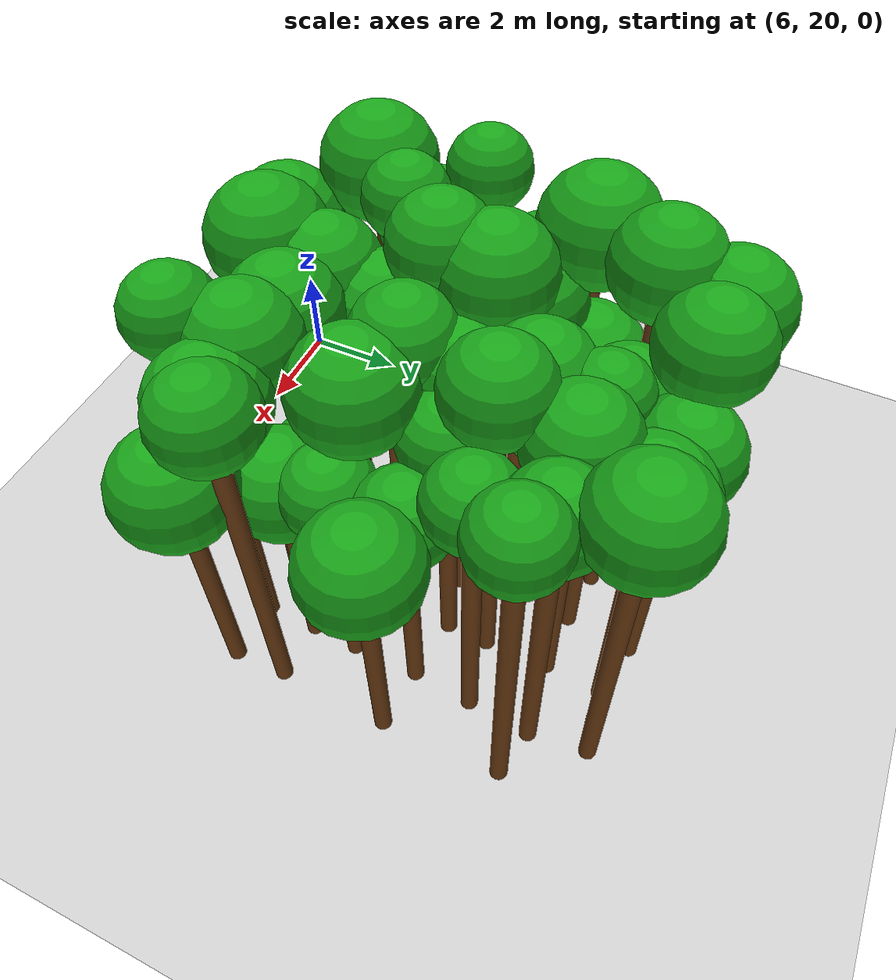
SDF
<sdf version="1.6">
 <world name="forest_world">
  <include><uri>model://sun</uri></include>
  <include><uri>model://ground_plane</uri></include>
  <model name="tree_1895_trunk">
   <static>true</static>
   <pose>7.34 22.90 3.13 0 0 0</pose>
   <link name="link">
    <collision name="collision">
     <geometry><cylinder><radius>0.16</radius><length>6.27</length></cylinder></geometry>
    </collision>
    <visual name="visual">
     <geometry><cylinder><radius>0.16</radius><length>6.27</length></cylinder></geometry>
     <material><ambient>0.35 0.20 0.05 1</ambient><diffuse>0.45 0.25 0.08 1</diffuse></material>
    </visual>
   </link>
  </model>
  <model name="tree_1895_leaf">
   <static>true</static>
   <pose>7.34 22.90 6.91 0 0 0</pose>
   <link name="link">
    <collision name="collision"><geometry><sphere><radius>1.07</radius></sphere></geometry></collision>
    <visual name="visual">
     <geometry><sphere><radius>1.07</radius></sphere></geometry>
     <material><ambient>0.05 0.45 0.05 1</ambient><diffuse>0.10 0.65 0.10 1</diffuse></material>
    </visual>
   </link>
  </model>
  <model name="tree_1896_trunk">
   <static>true</static>
   <pose>7.41 23.93 2.71 0 0 0</pose>
   <link name="link">
    <collision name="collision">
     <geometry><cylinder><radius>0.16</radius><length>5.42</length></cylinder></geometry>
    </collision>
    <visual name="visual">
     <geometry><cylinder><radius>0.16</radius><length>5.42</length></cylinder></geometry>
     <material><ambient>0.35 0.20 0.05 1</ambient><diffuse>0.45 0.25 0.08 1</diffuse></material>
    </visual>
   </link>
  </model>
  <model name="tree_1896_leaf">
   <static>true</static>
   <pose>7.41 23.93 6.02 0 0 0</pose>
   <link name="link">
    <collision name="collision"><geometry><sphere><radius>1.00</radius></sphere></geometry></collision>
    <visual name="visual">
     <geometry><sphere><radius>1.00</radius></sphere></geometry>
     <material><ambient>0.05 0.45 0.05 1</ambient><diffuse>0.10 0.65 0.10 1</diffuse></material>
    </visual>
   </link>
  </model>
  <model name="tree_1897_trunk">
   <static>true</static>
   <pose>7.38 25.02 3.49 0 0 0</pose>
   <link name="link">
    <collision name="collision">
     <geometry><cylinder><radius>0.16</radius><length>6.99</length></cylinder></geometry>
    </collision>
    <visual name="visual">
     <geometry><cylinder><radius>0.16</radius><length>6.99</length></cylinder></geometry>
     <material><ambient>0.35 0.20 0.05 1</ambient><diffuse>0.45 0.25 0.08 1</diffuse></material>
    </visual>
   </link>
  </model>
  <model name="tree_1897_leaf">
   <static>true</static>
   <pose>7.38 25.02 7.43 0 0 0</pose>
   <link name="link">
    <collision name="collision"><geometry><sphere><radius>0.74</radius></sphere></geometry></collision>
    <visual name="visual">
     <geometry><sphere><radius>0.74</radius></sphere></geometry>
     <material><ambient>0.05 0.45 0.05 1</ambient><diffuse>0.10 0.65 0.10 1</diffuse></material>
    </visual>
   </link>
  </model>
  <model name="tree_1898_trunk">
   <static>true</static>
   <pose>7.30 26.06 2.62 0 0 0</pose>
   <link name="link">
    <collision name="collision">
     <geometry><cylinder><radius>0.16</radius><length>5.25</length></cylinder></geometry>
    </collision>
    <visual name="visual">
     <geometry><cylinder><radius>0.16</radius><length>5.25</length></cylinder></geometry>
     <material><ambient>0.35 0.20 0.05 1</ambient><diffuse>0.45 0.25 0.08 1</diffuse></material>
    </visual>
   </link>
  </model>
  <model name="tree_1898_leaf">
   <static>true</static>
   <pose>7.30 26.06 5.77 0 0 0</pose>
   <link name="link">
    <collision name="collision"><geometry><sphere><radius>0.88</radius></sphere></geometry></collision>
    <visual name="visual">
     <geometry><sphere><radius>0.88</radius></sphere></geometry>
     <material><ambient>0.05 0.45 0.05 1</ambient><diffuse>0.10 0.65 0.10 1</diffuse></material>
    </visual>
   </link>
  </model>
  <model name="tree_1899_trunk">
   <static>true</static>
   <pose>7.56 27.05 3.19 0 0 0</pose>
   <link name="link">
    <collision name="collision">
     <geometry><cylinder><radius>0.16</radius><length>6.39</length></cylinder></geometry>
    </collision>
    <visual name="visual">
     <geometry><cylinder><radius>0.16</radius><length>6.39</length></cylinder></geometry>
     <material><ambient>0.35 0.20 0.05 1</ambient><diffuse>0.45 0.25 0.08 1</diffuse></material>
    </visual>
   </link>
  </model>
  <model name="tree_1899_leaf">
   <static>true</static>
   <pose>7.56 27.05 7.03 0 0 0</pose>
   <link name="link">
    <collision name="collision"><geometry><sphere><radius>1.07</radius></sphere></geometry></collision>
    <visual name="visual">
     <geometry><sphere><radius>1.07</radius></sphere></geometry>
     <material><ambient>0.05 0.45 0.05 1</ambient><diffuse>0.10 0.65 0.10 1</diffuse></material>
    </visual>
   </link>
  </model>
  <model name="tree_1900_trunk">
   <static>true</static>
   <pose>7.37 28.44 2.99 0 0 0</pose>
   <link name="link">
    <collision name="collision">
     <geometry><cylinder><radius>0.16</radius><length>5.97</length></cylinder></geometry>
    </collision>
    <visual name="visual">
     <geometry><cylinder><radius>0.16</radius><length>5.97</length></cylinder></geometry>
     <material><ambient>0.35 0.20 0.05 1</ambient><diffuse>0.45 0.25 0.08 1</diffuse></material>
    </visual>
   </link>
  </model>
  <model name="tree_1900_leaf">
   <static>true</static>
   <pose>7.37 28.44 6.44 0 0 0</pose>
   <link name="link">
    <collision name="collision"><geometry><sphere><radius>0.78</radius></sphere></geometry></collision>
    <visual name="visual">
     <geometry><sphere><radius>0.78</radius></sphere></geometry>
     <material><ambient>0.05 0.45 0.05 1</ambient><diffuse>0.10 0.65 0.10 1</diffuse></material>
    </visual>
   </link>
  </model>
  <model name="tree_1901_trunk">
   <static>true</static>
   <pose>7.48 29.43 2.23 0 0 0</pose>
   <link name="link">
    <collision name="collision">
     <geometry><cylinder><radius>0.16</radius><length>4.46</length></cylinder></geometry>
    </collision>
    <visual name="visual">
     <geometry><cylinder><radius>0.16</radius><length>4.46</length></cylinder></geometry>
     <material><ambient>0.35 0.20 0.05 1</ambient><diffuse>0.45 0.25 0.08 1</diffuse></material>
    </visual>
   </link>
  </model>
  <model name="tree_1901_leaf">
   <static>true</static>
   <pose>7.48 29.43 4.97 0 0 0</pose>
   <link name="link">
    <collision name="collision"><geometry><sphere><radius>0.85</radius></sphere></geometry></collision>
    <visual name="visual">
     <geometry><sphere><radius>0.85</radius></sphere></geometry>
     <material><ambient>0.05 0.45 0.05 1</ambient><diffuse>0.10 0.65 0.10 1</diffuse></material>
    </visual>
   </link>
  </model>
  <model name="tree_1949_trunk">
   <static>true</static>
   <pose>8.61 21.70 2.77 0 0 0</pose>
   <link name="link">
    <collision name="collision">
     <geometry><cylinder><radius>0.16</radius><length>5.54</length></cylinder></geometry>
    </collision>
    <visual name="visual">
     <geometry><cylinder><radius>0.16</radius><length>5.54</length></cylinder></geometry>
     <material><ambient>0.35 0.20 0.05 1</ambient><diffuse>0.45 0.25 0.08 1</diffuse></material>
    </visual>
   </link>
  </model>
  <model name="tree_1949_leaf">
   <static>true</static>
   <pose>8.61 21.70 6.16 0 0 0</pose>
   <link name="link">
    <collision name="collision"><geometry><sphere><radius>1.03</radius></sphere></geometry></collision>
    <visual name="visual">
     <geometry><sphere><radius>1.03</radius></sphere></geometry>
     <material><ambient>0.05 0.45 0.05 1</ambient><diffuse>0.10 0.65 0.10 1</diffuse></material>
    </visual>
   </link>
  </model>
  <model name="tree_1950_trunk">
   <static>true</static>
   <pose>8.48 22.74 2.02 0 0 0</pose>
   <link name="link">
    <collision name="collision">
     <geometry><cylinder><radius>0.16</radius><length>4.04</length></cylinder></geometry>
    </collision>
    <visual name="visual">
     <geometry><cylinder><radius>0.16</radius><length>4.04</length></cylinder></geometry>
     <material><ambient>0.35 0.20 0.05 1</ambient><diffuse>0.45 0.25 0.08 1</diffuse></material>
    </visual>
   </link>
  </model>
  <model name="tree_1950_leaf">
   <static>true</static>
   <pose>8.48 22.74 4.59 0 0 0</pose>
   <link name="link">
    <collision name="collision"><geometry><sphere><radius>0.92</radius></sphere></geometry></collision>
    <visual name="visual">
     <geometry><sphere><radius>0.92</radius></sphere></geometry>
     <material><ambient>0.05 0.45 0.05 1</ambient><diffuse>0.10 0.65 0.10 1</diffuse></material>
    </visual>
   </link>
  </model>
  <model name="tree_1951_trunk">
   <static>true</static>
   <pose>8.34 23.95 3.36 0 0 0</pose>
   <link name="link">
    <collision name="collision">
     <geometry><cylinder><radius>0.16</radius><length>6.71</length></cylinder></geometry>
    </collision>
    <visual name="visual">
     <geometry><cylinder><radius>0.16</radius><length>6.71</length></cylinder></geometry>
     <material><ambient>0.35 0.20 0.05 1</ambient><diffuse>0.45 0.25 0.08 1</diffuse></material>
    </visual>
   </link>
  </model>
  <model name="tree_1951_leaf">
   <static>true</static>
   <pose>8.34 23.95 7.17 0 0 0</pose>
   <link name="link">
    <collision name="collision"><geometry><sphere><radius>0.77</radius></sphere></geometry></collision>
    <visual name="visual">
     <geometry><sphere><radius>0.77</radius></sphere></geometry>
     <material><ambient>0.05 0.45 0.05 1</ambient><diffuse>0.10 0.65 0.10 1</diffuse></material>
    </visual>
   </link>
  </model>
  <model name="tree_1952_trunk">
   <static>true</static>
   <pose>8.57 25.14 2.05 0 0 0</pose>
   <link name="link">
    <collision name="collision">
     <geometry><cylinder><radius>0.16</radius><length>4.11</length></cylinder></geometry>
    </collision>
    <visual name="visual">
     <geometry><cylinder><radius>0.16</radius><length>4.11</length></cylinder></geometry>
     <material><ambient>0.35 0.20 0.05 1</ambient><diffuse>0.45 0.25 0.08 1</diffuse></material>
    </visual>
   </link>
  </model>
  <model name="tree_1952_leaf">
   <static>true</static>
   <pose>8.57 25.14 4.68 0 0 0</pose>
   <link name="link">
    <collision name="collision"><geometry><sphere><radius>0.96</radius></sphere></geometry></collision>
    <visual name="visual">
     <geometry><sphere><radius>0.96</radius></sphere></geometry>
     <material><ambient>0.05 0.45 0.05 1</ambient><diffuse>0.10 0.65 0.10 1</diffuse></material>
    </visual>
   </link>
  </model>
  <model name="tree_1953_trunk">
   <static>true</static>
   <pose>8.53 26.23 2.64 0 0 0</pose>
   <link name="link">
    <collision name="collision">
     <geometry><cylinder><radius>0.16</radius><length>5.29</length></cylinder></geometry>
    </collision>
    <visual name="visual">
     <geometry><cylinder><radius>0.16</radius><length>5.29</length></cylinder></geometry>
     <material><ambient>0.35 0.20 0.05 1</ambient><diffuse>0.45 0.25 0.08 1</diffuse></material>
    </visual>
   </link>
  </model>
  <model name="tree_1953_leaf">
   <static>true</static>
   <pose>8.53 26.23 5.93 0 0 0</pose>
   <link name="link">
    <collision name="collision"><geometry><sphere><radius>1.07</radius></sphere></geometry></collision>
    <visual name="visual">
     <geometry><sphere><radius>1.07</radius></sphere></geometry>
     <material><ambient>0.05 0.45 0.05 1</ambient><diffuse>0.10 0.65 0.10 1</diffuse></material>
    </visual>
   </link>
  </model>
  <model name="tree_1954_trunk">
   <static>true</static>
   <pose>8.34 27.37 2.11 0 0 0</pose>
   <link name="link">
    <collision name="collision">
     <geometry><cylinder><radius>0.16</radius><length>4.21</length></cylinder></geometry>
    </collision>
    <visual name="visual">
     <geometry><cylinder><radius>0.16</radius><length>4.21</length></cylinder></geometry>
     <material><ambient>0.35 0.20 0.05 1</ambient><diffuse>0.45 0.25 0.08 1</diffuse></material>
    </visual>
   </link>
  </model>
  <model name="tree_1954_leaf">
   <static>true</static>
   <pose>8.34 27.37 4.85 0 0 0</pose>
   <link name="link">
    <collision name="collision"><geometry><sphere><radius>1.06</radius></sphere></geometry></collision>
    <visual name="visual">
     <geometry><sphere><radius>1.06</radius></sphere></geometry>
     <material><ambient>0.05 0.45 0.05 1</ambient><diffuse>0.10 0.65 0.10 1</diffuse></material>
    </visual>
   </link>
  </model>
  <model name="tree_1955_trunk">
   <static>true</static>
   <pose>8.63 28.43 3.49 0 0 0</pose>
   <link name="link">
    <collision name="collision">
     <geometry><cylinder><radius>0.16</radius><length>6.99</length></cylinder></geometry>
    </collision>
    <visual name="visual">
     <geometry><cylinder><radius>0.16</radius><length>6.99</length></cylinder></geometry>
     <material><ambient>0.35 0.20 0.05 1</ambient><diffuse>0.45 0.25 0.08 1</diffuse></material>
    </visual>
   </link>
  </model>
  <model name="tree_1955_leaf">
   <static>true</static>
   <pose>8.63 28.43 7.55 0 0 0</pose>
   <link name="link">
    <collision name="collision"><geometry><sphere><radius>0.93</radius></sphere></geometry></collision>
    <visual name="visual">
     <geometry><sphere><radius>0.93</radius></sphere></geometry>
     <material><ambient>0.05 0.45 0.05 1</ambient><diffuse>0.10 0.65 0.10 1</diffuse></material>
    </visual>
   </link>
  </model>
  <model name="tree_1956_trunk">
   <static>true</static>
   <pose>8.68 29.51 3.31 0 0 0</pose>
   <link name="link">
    <collision name="collision">
     <geometry><cylinder><radius>0.16</radius><length>6.62</length></cylinder></geometry>
    </collision>
    <visual name="visual">
     <geometry><cylinder><radius>0.16</radius><length>6.62</length></cylinder></geometry>
     <material><ambient>0.35 0.20 0.05 1</ambient><diffuse>0.45 0.25 0.08 1</diffuse></material>
    </visual>
   </link>
  </model>
  <model name="tree_1956_leaf">
   <static>true</static>
   <pose>8.68 29.51 7.19 0 0 0</pose>
   <link name="link">
    <collision name="collision"><geometry><sphere><radius>0.94</radius></sphere></geometry></collision>
    <visual name="visual">
     <geometry><sphere><radius>0.94</radius></sphere></geometry>
     <material><ambient>0.05 0.45 0.05 1</ambient><diffuse>0.10 0.65 0.10 1</diffuse></material>
    </visual>
   </link>
  </model>
  <model name="tree_2004_trunk">
   <static>true</static>
   <pose>9.44 21.84 2.89 0 0 0</pose>
   <link name="link">
    <collision name="collision">
     <geometry><cylinder><radius>0.16</radius><length>5.78</length></cylinder></geometry>
    </collision>
    <visual name="visual">
     <geometry><cylinder><radius>0.16</radius><length>5.78</length></cylinder></geometry>
     <material><ambient>0.35 0.20 0.05 1</ambient><diffuse>0.45 0.25 0.08 1</diffuse></material>
    </visual>
   </link>
  </model>
  <model name="tree_2004_leaf">
   <static>true</static>
   <pose>9.44 21.84 6.44 0 0 0</pose>
   <link name="link">
    <collision name="collision"><geometry><sphere><radius>1.10</radius></sphere></geometry></collision>
    <visual name="visual">
     <geometry><sphere><radius>1.10</radius></sphere></geometry>
     <material><ambient>0.05 0.45 0.05 1</ambient><diffuse>0.10 0.65 0.10 1</diffuse></material>
    </visual>
   </link>
  </model>
  <model name="tree_2005_trunk">
   <static>true</static>
   <pose>9.47 22.96 2.76 0 0 0</pose>
   <link name="link">
    <collision name="collision">
     <geometry><cylinder><radius>0.16</radius><length>5.53</length></cylinder></geometry>
    </collision>
    <visual name="visual">
     <geometry><cylinder><radius>0.16</radius><length>5.53</length></cylinder></geometry>
     <material><ambient>0.35 0.20 0.05 1</ambient><diffuse>0.45 0.25 0.08 1</diffuse></material>
    </visual>
   </link>
  </model>
  <model name="tree_2005_leaf">
   <static>true</static>
   <pose>9.47 22.96 6.14 0 0 0</pose>
   <link name="link">
    <collision name="collision"><geometry><sphere><radius>1.01</radius></sphere></geometry></collision>
    <visual name="visual">
     <geometry><sphere><radius>1.01</radius></sphere></geometry>
     <material><ambient>0.05 0.45 0.05 1</ambient><diffuse>0.10 0.65 0.10 1</diffuse></material>
    </visual>
   </link>
  </model>
  <model name="tree_2006_trunk">
   <static>true</static>
   <pose>9.48 24.05 2.53 0 0 0</pose>
   <link name="link">
    <collision name="collision">
     <geometry><cylinder><radius>0.16</radius><length>5.05</length></cylinder></geometry>
    </collision>
    <visual name="visual">
     <geometry><cylinder><radius>0.16</radius><length>5.05</length></cylinder></geometry>
     <material><ambient>0.35 0.20 0.05 1</ambient><diffuse>0.45 0.25 0.08 1</diffuse></material>
    </visual>
   </link>
  </model>
  <model name="tree_2006_leaf">
   <static>true</static>
   <pose>9.48 24.05 5.68 0 0 0</pose>
   <link name="link">
    <collision name="collision"><geometry><sphere><radius>1.04</radius></sphere></geometry></collision>
    <visual name="visual">
     <geometry><sphere><radius>1.04</radius></sphere></geometry>
     <material><ambient>0.05 0.45 0.05 1</ambient><diffuse>0.10 0.65 0.10 1</diffuse></material>
    </visual>
   </link>
  </model>
  <model name="tree_2007_trunk">
   <static>true</static>
   <pose>9.46 25.12 3.45 0 0 0</pose>
   <link name="link">
    <collision name="collision">
     <geometry><cylinder><radius>0.16</radius><length>6.90</length></cylinder></geometry>
    </collision>
    <visual name="visual">
     <geometry><cylinder><radius>0.16</radius><length>6.90</length></cylinder></geometry>
     <material><ambient>0.35 0.20 0.05 1</ambient><diffuse>0.45 0.25 0.08 1</diffuse></material>
    </visual>
   </link>
  </model>
  <model name="tree_2007_leaf">
   <static>true</static>
   <pose>9.46 25.12 7.43 0 0 0</pose>
   <link name="link">
    <collision name="collision"><geometry><sphere><radius>0.89</radius></sphere></geometry></collision>
    <visual name="visual">
     <geometry><sphere><radius>0.89</radius></sphere></geometry>
     <material><ambient>0.05 0.45 0.05 1</ambient><diffuse>0.10 0.65 0.10 1</diffuse></material>
    </visual>
   </link>
  </model>
  <model name="tree_2008_trunk">
   <static>true</static>
   <pose>9.47 26.05 3.30 0 0 0</pose>
   <link name="link">
    <collision name="collision">
     <geometry><cylinder><radius>0.16</radius><length>6.61</length></cylinder></geometry>
    </collision>
    <visual name="visual">
     <geometry><cylinder><radius>0.16</radius><length>6.61</length></cylinder></geometry>
     <material><ambient>0.35 0.20 0.05 1</ambient><diffuse>0.45 0.25 0.08 1</diffuse></material>
    </visual>
   </link>
  </model>
  <model name="tree_2008_leaf">
   <static>true</static>
   <pose>9.47 26.05 7.20 0 0 0</pose>
   <link name="link">
    <collision name="collision"><geometry><sphere><radius>1.00</radius></sphere></geometry></collision>
    <visual name="visual">
     <geometry><sphere><radius>1.00</radius></sphere></geometry>
     <material><ambient>0.05 0.45 0.05 1</ambient><diffuse>0.10 0.65 0.10 1</diffuse></material>
    </visual>
   </link>
  </model>
  <model name="tree_2009_trunk">
   <static>true</static>
   <pose>9.55 27.22 2.09 0 0 0</pose>
   <link name="link">
    <collision name="collision">
     <geometry><cylinder><radius>0.16</radius><length>4.19</length></cylinder></geometry>
    </collision>
    <visual name="visual">
     <geometry><cylinder><radius>0.16</radius><length>4.19</length></cylinder></geometry>
     <material><ambient>0.35 0.20 0.05 1</ambient><diffuse>0.45 0.25 0.08 1</diffuse></material>
    </visual>
   </link>
  </model>
  <model name="tree_2009_leaf">
   <static>true</static>
   <pose>9.55 27.22 4.84 0 0 0</pose>
   <link name="link">
    <collision name="collision"><geometry><sphere><radius>1.09</radius></sphere></geometry></collision>
    <visual name="visual">
     <geometry><sphere><radius>1.09</radius></sphere></geometry>
     <material><ambient>0.05 0.45 0.05 1</ambient><diffuse>0.10 0.65 0.10 1</diffuse></material>
    </visual>
   </link>
  </model>
  <model name="tree_2010_trunk">
   <static>true</static>
   <pose>9.53 28.39 2.55 0 0 0</pose>
   <link name="link">
    <collision name="collision">
     <geometry><cylinder><radius>0.16</radius><length>5.10</length></cylinder></geometry>
    </collision>
    <visual name="visual">
     <geometry><cylinder><radius>0.16</radius><length>5.10</length></cylinder></geometry>
     <material><ambient>0.35 0.20 0.05 1</ambient><diffuse>0.45 0.25 0.08 1</diffuse></material>
    </visual>
   </link>
  </model>
  <model name="tree_2010_leaf">
   <static>true</static>
   <pose>9.53 28.39 5.61 0 0 0</pose>
   <link name="link">
    <collision name="collision"><geometry><sphere><radius>0.85</radius></sphere></geometry></collision>
    <visual name="visual">
     <geometry><sphere><radius>0.85</radius></sphere></geometry>
     <material><ambient>0.05 0.45 0.05 1</ambient><diffuse>0.10 0.65 0.10 1</diffuse></material>
    </visual>
   </link>
  </model>
  <model name="tree_2011_trunk">
   <static>true</static>
   <pose>9.65 29.46 3.35 0 0 0</pose>
   <link name="link">
    <collision name="collision">
     <geometry><cylinder><radius>0.16</radius><length>6.70</length></cylinder></geometry>
    </collision>
    <visual name="visual">
     <geometry><cylinder><radius>0.16</radius><length>6.70</length></cylinder></geometry>
     <material><ambient>0.35 0.20 0.05 1</ambient><diffuse>0.45 0.25 0.08 1</diffuse></material>
    </visual>
   </link>
  </model>
  <model name="tree_2011_leaf">
   <static>true</static>
   <pose>9.65 29.46 7.25 0 0 0</pose>
   <link name="link">
    <collision name="collision"><geometry><sphere><radius>0.91</radius></sphere></geometry></collision>
    <visual name="visual">
     <geometry><sphere><radius>0.91</radius></sphere></geometry>
     <material><ambient>0.05 0.45 0.05 1</ambient><diffuse>0.10 0.65 0.10 1</diffuse></material>
    </visual>
   </link>
  </model>
  <model name="tree_2059_trunk">
   <static>true</static>
   <pose>10.86 21.70 2.42 0 0 0</pose>
   <link name="link">
    <collision name="collision">
     <geometry><cylinder><radius>0.16</radius><length>4.84</length></cylinder></geometry>
    </collision>
    <visual name="visual">
     <geometry><cylinder><radius>0.16</radius><length>4.84</length></cylinder></geometry>
     <material><ambient>0.35 0.20 0.05 1</ambient><diffuse>0.45 0.25 0.08 1</diffuse></material>
    </visual>
   </link>
  </model>
  <model name="tree_2059_leaf">
   <static>true</static>
   <pose>10.86 21.70 5.28 0 0 0</pose>
   <link name="link">
    <collision name="collision"><geometry><sphere><radius>0.72</radius></sphere></geometry></collision>
    <visual name="visual">
     <geometry><sphere><radius>0.72</radius></sphere></geometry>
     <material><ambient>0.05 0.45 0.05 1</ambient><diffuse>0.10 0.65 0.10 1</diffuse></material>
    </visual>
   </link>
  </model>
  <model name="tree_2060_trunk">
   <static>true</static>
   <pose>10.70 22.90 2.81 0 0 0</pose>
   <link name="link">
    <collision name="collision">
     <geometry><cylinder><radius>0.16</radius><length>5.62</length></cylinder></geometry>
    </collision>
    <visual name="visual">
     <geometry><cylinder><radius>0.16</radius><length>5.62</length></cylinder></geometry>
     <material><ambient>0.35 0.20 0.05 1</ambient><diffuse>0.45 0.25 0.08 1</diffuse></material>
    </visual>
   </link>
  </model>
  <model name="tree_2060_leaf">
   <static>true</static>
   <pose>10.70 22.90 6.22 0 0 0</pose>
   <link name="link">
    <collision name="collision"><geometry><sphere><radius>1.01</radius></sphere></geometry></collision>
    <visual name="visual">
     <geometry><sphere><radius>1.01</radius></sphere></geometry>
     <material><ambient>0.05 0.45 0.05 1</ambient><diffuse>0.10 0.65 0.10 1</diffuse></material>
    </visual>
   </link>
  </model>
  <model name="tree_2061_trunk">
   <static>true</static>
   <pose>10.61 23.99 2.04 0 0 0</pose>
   <link name="link">
    <collision name="collision">
     <geometry><cylinder><radius>0.16</radius><length>4.08</length></cylinder></geometry>
    </collision>
    <visual name="visual">
     <geometry><cylinder><radius>0.16</radius><length>4.08</length></cylinder></geometry>
     <material><ambient>0.35 0.20 0.05 1</ambient><diffuse>0.45 0.25 0.08 1</diffuse></material>
    </visual>
   </link>
  </model>
  <model name="tree_2061_leaf">
   <static>true</static>
   <pose>10.61 23.99 4.55 0 0 0</pose>
   <link name="link">
    <collision name="collision"><geometry><sphere><radius>0.78</radius></sphere></geometry></collision>
    <visual name="visual">
     <geometry><sphere><radius>0.78</radius></sphere></geometry>
     <material><ambient>0.05 0.45 0.05 1</ambient><diffuse>0.10 0.65 0.10 1</diffuse></material>
    </visual>
   </link>
  </model>
  <model name="tree_2062_trunk">
   <static>true</static>
   <pose>10.86 25.17 3.07 0 0 0</pose>
   <link name="link">
    <collision name="collision">
     <geometry><cylinder><radius>0.16</radius><length>6.15</length></cylinder></geometry>
    </collision>
    <visual name="visual">
     <geometry><cylinder><radius>0.16</radius><length>6.15</length></cylinder></geometry>
     <material><ambient>0.35 0.20 0.05 1</ambient><diffuse>0.45 0.25 0.08 1</diffuse></material>
    </visual>
   </link>
  </model>
  <model name="tree_2062_leaf">
   <static>true</static>
   <pose>10.86 25.17 6.69 0 0 0</pose>
   <link name="link">
    <collision name="collision"><geometry><sphere><radius>0.90</radius></sphere></geometry></collision>
    <visual name="visual">
     <geometry><sphere><radius>0.90</radius></sphere></geometry>
     <material><ambient>0.05 0.45 0.05 1</ambient><diffuse>0.10 0.65 0.10 1</diffuse></material>
    </visual>
   </link>
  </model>
  <model name="tree_2063_trunk">
   <static>true</static>
   <pose>10.70 26.02 2.85 0 0 0</pose>
   <link name="link">
    <collision name="collision">
     <geometry><cylinder><radius>0.16</radius><length>5.69</length></cylinder></geometry>
    </collision>
    <visual name="visual">
     <geometry><cylinder><radius>0.16</radius><length>5.69</length></cylinder></geometry>
     <material><ambient>0.35 0.20 0.05 1</ambient><diffuse>0.45 0.25 0.08 1</diffuse></material>
    </visual>
   </link>
  </model>
  <model name="tree_2063_leaf">
   <static>true</static>
   <pose>10.70 26.02 6.23 0 0 0</pose>
   <link name="link">
    <collision name="collision"><geometry><sphere><radius>0.89</radius></sphere></geometry></collision>
    <visual name="visual">
     <geometry><sphere><radius>0.89</radius></sphere></geometry>
     <material><ambient>0.05 0.45 0.05 1</ambient><diffuse>0.10 0.65 0.10 1</diffuse></material>
    </visual>
   </link>
  </model>
  <model name="tree_2064_trunk">
   <static>true</static>
   <pose>10.59 27.27 3.02 0 0 0</pose>
   <link name="link">
    <collision name="collision">
     <geometry><cylinder><radius>0.16</radius><length>6.03</length></cylinder></geometry>
    </collision>
    <visual name="visual">
     <geometry><cylinder><radius>0.16</radius><length>6.03</length></cylinder></geometry>
     <material><ambient>0.35 0.20 0.05 1</ambient><diffuse>0.45 0.25 0.08 1</diffuse></material>
    </visual>
   </link>
  </model>
  <model name="tree_2064_leaf">
   <static>true</static>
   <pose>10.59 27.27 6.57 0 0 0</pose>
   <link name="link">
    <collision name="collision"><geometry><sphere><radius>0.90</radius></sphere></geometry></collision>
    <visual name="visual">
     <geometry><sphere><radius>0.90</radius></sphere></geometry>
     <material><ambient>0.05 0.45 0.05 1</ambient><diffuse>0.10 0.65 0.10 1</diffuse></material>
    </visual>
   </link>
  </model>
  <model name="tree_2065_trunk">
   <static>true</static>
   <pose>10.57 28.29 3.07 0 0 0</pose>
   <link name="link">
    <collision name="collision">
     <geometry><cylinder><radius>0.16</radius><length>6.14</length></cylinder></geometry>
    </collision>
    <visual name="visual">
     <geometry><cylinder><radius>0.16</radius><length>6.14</length></cylinder></geometry>
     <material><ambient>0.35 0.20 0.05 1</ambient><diffuse>0.45 0.25 0.08 1</diffuse></material>
    </visual>
   </link>
  </model>
  <model name="tree_2065_leaf">
   <static>true</static>
   <pose>10.57 28.29 6.58 0 0 0</pose>
   <link name="link">
    <collision name="collision"><geometry><sphere><radius>0.72</radius></sphere></geometry></collision>
    <visual name="visual">
     <geometry><sphere><radius>0.72</radius></sphere></geometry>
     <material><ambient>0.05 0.45 0.05 1</ambient><diffuse>0.10 0.65 0.10 1</diffuse></material>
    </visual>
   </link>
  </model>
  <model name="tree_2066_trunk">
   <static>true</static>
   <pose>10.70 29.57 2.78 0 0 0</pose>
   <link name="link">
    <collision name="collision">
     <geometry><cylinder><radius>0.16</radius><length>5.56</length></cylinder></geometry>
    </collision>
    <visual name="visual">
     <geometry><cylinder><radius>0.16</radius><length>5.56</length></cylinder></geometry>
     <material><ambient>0.35 0.20 0.05 1</ambient><diffuse>0.45 0.25 0.08 1</diffuse></material>
    </visual>
   </link>
  </model>
  <model name="tree_2066_leaf">
   <static>true</static>
   <pose>10.70 29.57 6.09 0 0 0</pose>
   <link name="link">
    <collision name="collision"><geometry><sphere><radius>0.90</radius></sphere></geometry></collision>
    <visual name="visual">
     <geometry><sphere><radius>0.90</radius></sphere></geometry>
     <material><ambient>0.05 0.45 0.05 1</ambient><diffuse>0.10 0.65 0.10 1</diffuse></material>
    </visual>
   </link>
  </model>
  <model name="tree_2114_trunk">
   <static>true</static>
   <pose>11.92 21.71 3.14 0 0 0</pose>
   <link name="link">
    <collision name="collision">
     <geometry><cylinder><radius>0.16</radius><length>6.27</length></cylinder></geometry>
    </collision>
    <visual name="visual">
     <geometry><cylinder><radius>0.16</radius><length>6.27</length></cylinder></geometry>
     <material><ambient>0.35 0.20 0.05 1</ambient><diffuse>0.45 0.25 0.08 1</diffuse></material>
    </visual>
   </link>
  </model>
  <model name="tree_2114_leaf">
   <static>true</static>
   <pose>11.92 21.71 6.76 0 0 0</pose>
   <link name="link">
    <collision name="collision"><geometry><sphere><radius>0.81</radius></sphere></geometry></collision>
    <visual name="visual">
     <geometry><sphere><radius>0.81</radius></sphere></geometry>
     <material><ambient>0.05 0.45 0.05 1</ambient><diffuse>0.10 0.65 0.10 1</diffuse></material>
    </visual>
   </link>
  </model>
  <model name="tree_2115_trunk">
   <static>true</static>
   <pose>11.71 22.81 2.90 0 0 0</pose>
   <link name="link">
    <collision name="collision">
     <geometry><cylinder><radius>0.16</radius><length>5.79</length></cylinder></geometry>
    </collision>
    <visual name="visual">
     <geometry><cylinder><radius>0.16</radius><length>5.79</length></cylinder></geometry>
     <material><ambient>0.35 0.20 0.05 1</ambient><diffuse>0.45 0.25 0.08 1</diffuse></material>
    </visual>
   </link>
  </model>
  <model name="tree_2115_leaf">
   <static>true</static>
   <pose>11.71 22.81 6.40 0 0 0</pose>
   <link name="link">
    <collision name="collision"><geometry><sphere><radius>1.02</radius></sphere></geometry></collision>
    <visual name="visual">
     <geometry><sphere><radius>1.02</radius></sphere></geometry>
     <material><ambient>0.05 0.45 0.05 1</ambient><diffuse>0.10 0.65 0.10 1</diffuse></material>
    </visual>
   </link>
  </model>
  <model name="tree_2116_trunk">
   <static>true</static>
   <pose>11.97 24.00 2.04 0 0 0</pose>
   <link name="link">
    <collision name="collision">
     <geometry><cylinder><radius>0.16</radius><length>4.09</length></cylinder></geometry>
    </collision>
    <visual name="visual">
     <geometry><cylinder><radius>0.16</radius><length>4.09</length></cylinder></geometry>
     <material><ambient>0.35 0.20 0.05 1</ambient><diffuse>0.45 0.25 0.08 1</diffuse></material>
    </visual>
   </link>
  </model>
  <model name="tree_2116_leaf">
   <static>true</static>
   <pose>11.97 24.00 4.53 0 0 0</pose>
   <link name="link">
    <collision name="collision"><geometry><sphere><radius>0.74</radius></sphere></geometry></collision>
    <visual name="visual">
     <geometry><sphere><radius>0.74</radius></sphere></geometry>
     <material><ambient>0.05 0.45 0.05 1</ambient><diffuse>0.10 0.65 0.10 1</diffuse></material>
    </visual>
   </link>
  </model>
  <model name="tree_2117_trunk">
   <static>true</static>
   <pose>11.92 24.85 2.91 0 0 0</pose>
   <link name="link">
    <collision name="collision">
     <geometry><cylinder><radius>0.16</radius><length>5.82</length></cylinder></geometry>
    </collision>
    <visual name="visual">
     <geometry><cylinder><radius>0.16</radius><length>5.82</length></cylinder></geometry>
     <material><ambient>0.35 0.20 0.05 1</ambient><diffuse>0.45 0.25 0.08 1</diffuse></material>
    </visual>
   </link>
  </model>
  <model name="tree_2117_leaf">
   <static>true</static>
   <pose>11.92 24.85 6.45 0 0 0</pose>
   <link name="link">
    <collision name="collision"><geometry><sphere><radius>1.04</radius></sphere></geometry></collision>
    <visual name="visual">
     <geometry><sphere><radius>1.04</radius></sphere></geometry>
     <material><ambient>0.05 0.45 0.05 1</ambient><diffuse>0.10 0.65 0.10 1</diffuse></material>
    </visual>
   </link>
  </model>
  <model name="tree_2118_trunk">
   <static>true</static>
   <pose>11.69 26.24 2.67 0 0 0</pose>
   <link name="link">
    <collision name="collision">
     <geometry><cylinder><radius>0.16</radius><length>5.34</length></cylinder></geometry>
    </collision>
    <visual name="visual">
     <geometry><cylinder><radius>0.16</radius><length>5.34</length></cylinder></geometry>
     <material><ambient>0.35 0.20 0.05 1</ambient><diffuse>0.45 0.25 0.08 1</diffuse></material>
    </visual>
   </link>
  </model>
  <model name="tree_2118_leaf">
   <static>true</static>
   <pose>11.69 26.24 5.82 0 0 0</pose>
   <link name="link">
    <collision name="collision"><geometry><sphere><radius>0.80</radius></sphere></geometry></collision>
    <visual name="visual">
     <geometry><sphere><radius>0.80</radius></sphere></geometry>
     <material><ambient>0.05 0.45 0.05 1</ambient><diffuse>0.10 0.65 0.10 1</diffuse></material>
    </visual>
   </link>
  </model>
  <model name="tree_2119_trunk">
   <static>true</static>
   <pose>11.71 27.05 3.37 0 0 0</pose>
   <link name="link">
    <collision name="collision">
     <geometry><cylinder><radius>0.16</radius><length>6.74</length></cylinder></geometry>
    </collision>
    <visual name="visual">
     <geometry><cylinder><radius>0.16</radius><length>6.74</length></cylinder></geometry>
     <material><ambient>0.35 0.20 0.05 1</ambient><diffuse>0.45 0.25 0.08 1</diffuse></material>
    </visual>
   </link>
  </model>
  <model name="tree_2119_leaf">
   <static>true</static>
   <pose>11.71 27.05 7.27 0 0 0</pose>
   <link name="link">
    <collision name="collision"><geometry><sphere><radius>0.87</radius></sphere></geometry></collision>
    <visual name="visual">
     <geometry><sphere><radius>0.87</radius></sphere></geometry>
     <material><ambient>0.05 0.45 0.05 1</ambient><diffuse>0.10 0.65 0.10 1</diffuse></material>
    </visual>
   </link>
  </model>
  <model name="tree_2120_trunk">
   <static>true</static>
   <pose>11.68 28.27 3.13 0 0 0</pose>
   <link name="link">
    <collision name="collision">
     <geometry><cylinder><radius>0.16</radius><length>6.25</length></cylinder></geometry>
    </collision>
    <visual name="visual">
     <geometry><cylinder><radius>0.16</radius><length>6.25</length></cylinder></geometry>
     <material><ambient>0.35 0.20 0.05 1</ambient><diffuse>0.45 0.25 0.08 1</diffuse></material>
    </visual>
   </link>
  </model>
  <model name="tree_2120_leaf">
   <static>true</static>
   <pose>11.68 28.27 6.79 0 0 0</pose>
   <link name="link">
    <collision name="collision"><geometry><sphere><radius>0.89</radius></sphere></geometry></collision>
    <visual name="visual">
     <geometry><sphere><radius>0.89</radius></sphere></geometry>
     <material><ambient>0.05 0.45 0.05 1</ambient><diffuse>0.10 0.65 0.10 1</diffuse></material>
    </visual>
   </link>
  </model>
  <model name="tree_2121_trunk">
   <static>true</static>
   <pose>11.77 29.37 2.81 0 0 0</pose>
   <link name="link">
    <collision name="collision">
     <geometry><cylinder><radius>0.16</radius><length>5.62</length></cylinder></geometry>
    </collision>
    <visual name="visual">
     <geometry><cylinder><radius>0.16</radius><length>5.62</length></cylinder></geometry>
     <material><ambient>0.35 0.20 0.05 1</ambient><diffuse>0.45 0.25 0.08 1</diffuse></material>
    </visual>
   </link>
  </model>
  <model name="tree_2121_leaf">
   <static>true</static>
   <pose>11.77 29.37 6.21 0 0 0</pose>
   <link name="link">
    <collision name="collision"><geometry><sphere><radius>0.98</radius></sphere></geometry></collision>
    <visual name="visual">
     <geometry><sphere><radius>0.98</radius></sphere></geometry>
     <material><ambient>0.05 0.45 0.05 1</ambient><diffuse>0.10 0.65 0.10 1</diffuse></material>
    </visual>
   </link>
  </model>
  <model name="tree_2170_trunk">
   <static>true</static>
   <pose>12.83 22.89 2.78 0 0 0</pose>
   <link name="link">
    <collision name="collision">
     <geometry><cylinder><radius>0.16</radius><length>5.56</length></cylinder></geometry>
    </collision>
    <visual name="visual">
     <geometry><cylinder><radius>0.16</radius><length>5.56</length></cylinder></geometry>
     <material><ambient>0.35 0.20 0.05 1</ambient><diffuse>0.45 0.25 0.08 1</diffuse></material>
    </visual>
   </link>
  </model>
  <model name="tree_2170_leaf">
   <static>true</static>
   <pose>12.83 22.89 6.16 0 0 0</pose>
   <link name="link">
    <collision name="collision"><geometry><sphere><radius>1.00</radius></sphere></geometry></collision>
    <visual name="visual">
     <geometry><sphere><radius>1.00</radius></sphere></geometry>
     <material><ambient>0.05 0.45 0.05 1</ambient><diffuse>0.10 0.65 0.10 1</diffuse></material>
    </visual>
   </link>
  </model>
  <model name="tree_2171_trunk">
   <static>true</static>
   <pose>12.82 23.91 2.07 0 0 0</pose>
   <link name="link">
    <collision name="collision">
     <geometry><cylinder><radius>0.16</radius><length>4.14</length></cylinder></geometry>
    </collision>
    <visual name="visual">
     <geometry><cylinder><radius>0.16</radius><length>4.14</length></cylinder></geometry>
     <material><ambient>0.35 0.20 0.05 1</ambient><diffuse>0.45 0.25 0.08 1</diffuse></material>
    </visual>
   </link>
  </model>
  <model name="tree_2171_leaf">
   <static>true</static>
   <pose>12.82 23.91 4.71 0 0 0</pose>
   <link name="link">
    <collision name="collision"><geometry><sphere><radius>0.95</radius></sphere></geometry></collision>
    <visual name="visual">
     <geometry><sphere><radius>0.95</radius></sphere></geometry>
     <material><ambient>0.05 0.45 0.05 1</ambient><diffuse>0.10 0.65 0.10 1</diffuse></material>
    </visual>
   </link>
  </model>
  <model name="tree_2172_trunk">
   <static>true</static>
   <pose>12.85 24.82 2.29 0 0 0</pose>
   <link name="link">
    <collision name="collision">
     <geometry><cylinder><radius>0.16</radius><length>4.59</length></cylinder></geometry>
    </collision>
    <visual name="visual">
     <geometry><cylinder><radius>0.16</radius><length>4.59</length></cylinder></geometry>
     <material><ambient>0.35 0.20 0.05 1</ambient><diffuse>0.45 0.25 0.08 1</diffuse></material>
    </visual>
   </link>
  </model>
  <model name="tree_2172_leaf">
   <static>true</static>
   <pose>12.85 24.82 5.07 0 0 0</pose>
   <link name="link">
    <collision name="collision"><geometry><sphere><radius>0.80</radius></sphere></geometry></collision>
    <visual name="visual">
     <geometry><sphere><radius>0.80</radius></sphere></geometry>
     <material><ambient>0.05 0.45 0.05 1</ambient><diffuse>0.10 0.65 0.10 1</diffuse></material>
    </visual>
   </link>
  </model>
  <model name="tree_2173_trunk">
   <static>true</static>
   <pose>12.85 26.10 2.32 0 0 0</pose>
   <link name="link">
    <collision name="collision">
     <geometry><cylinder><radius>0.16</radius><length>4.63</length></cylinder></geometry>
    </collision>
    <visual name="visual">
     <geometry><cylinder><radius>0.16</radius><length>4.63</length></cylinder></geometry>
     <material><ambient>0.35 0.20 0.05 1</ambient><diffuse>0.45 0.25 0.08 1</diffuse></material>
    </visual>
   </link>
  </model>
  <model name="tree_2173_leaf">
   <static>true</static>
   <pose>12.85 26.10 5.14 0 0 0</pose>
   <link name="link">
    <collision name="collision"><geometry><sphere><radius>0.84</radius></sphere></geometry></collision>
    <visual name="visual">
     <geometry><sphere><radius>0.84</radius></sphere></geometry>
     <material><ambient>0.05 0.45 0.05 1</ambient><diffuse>0.10 0.65 0.10 1</diffuse></material>
    </visual>
   </link>
  </model>
  <model name="tree_2174_trunk">
   <static>true</static>
   <pose>12.94 27.25 2.95 0 0 0</pose>
   <link name="link">
    <collision name="collision">
     <geometry><cylinder><radius>0.16</radius><length>5.90</length></cylinder></geometry>
    </collision>
    <visual name="visual">
     <geometry><cylinder><radius>0.16</radius><length>5.90</length></cylinder></geometry>
     <material><ambient>0.35 0.20 0.05 1</ambient><diffuse>0.45 0.25 0.08 1</diffuse></material>
    </visual>
   </link>
  </model>
  <model name="tree_2174_leaf">
   <static>true</static>
   <pose>12.94 27.25 6.36 0 0 0</pose>
   <link name="link">
    <collision name="collision"><geometry><sphere><radius>0.76</radius></sphere></geometry></collision>
    <visual name="visual">
     <geometry><sphere><radius>0.76</radius></sphere></geometry>
     <material><ambient>0.05 0.45 0.05 1</ambient><diffuse>0.10 0.65 0.10 1</diffuse></material>
    </visual>
   </link>
  </model>
  <model name="tree_2175_trunk">
   <static>true</static>
   <pose>13.04 28.45 3.20 0 0 0</pose>
   <link name="link">
    <collision name="collision">
     <geometry><cylinder><radius>0.16</radius><length>6.39</length></cylinder></geometry>
    </collision>
    <visual name="visual">
     <geometry><cylinder><radius>0.16</radius><length>6.39</length></cylinder></geometry>
     <material><ambient>0.35 0.20 0.05 1</ambient><diffuse>0.45 0.25 0.08 1</diffuse></material>
    </visual>
   </link>
  </model>
  <model name="tree_2175_leaf">
   <static>true</static>
   <pose>13.04 28.45 6.87 0 0 0</pose>
   <link name="link">
    <collision name="collision"><geometry><sphere><radius>0.79</radius></sphere></geometry></collision>
    <visual name="visual">
     <geometry><sphere><radius>0.79</radius></sphere></geometry>
     <material><ambient>0.05 0.45 0.05 1</ambient><diffuse>0.10 0.65 0.10 1</diffuse></material>
    </visual>
   </link>
  </model>
  <model name="tree_2176_trunk">
   <static>true</static>
   <pose>12.89 29.54 3.37 0 0 0</pose>
   <link name="link">
    <collision name="collision">
     <geometry><cylinder><radius>0.16</radius><length>6.75</length></cylinder></geometry>
    </collision>
    <visual name="visual">
     <geometry><cylinder><radius>0.16</radius><length>6.75</length></cylinder></geometry>
     <material><ambient>0.35 0.20 0.05 1</ambient><diffuse>0.45 0.25 0.08 1</diffuse></material>
    </visual>
   </link>
  </model>
  <model name="tree_2176_leaf">
   <static>true</static>
   <pose>12.89 29.54 7.30 0 0 0</pose>
   <link name="link">
    <collision name="collision"><geometry><sphere><radius>0.92</radius></sphere></geometry></collision>
    <visual name="visual">
     <geometry><sphere><radius>0.92</radius></sphere></geometry>
     <material><ambient>0.05 0.45 0.05 1</ambient><diffuse>0.10 0.65 0.10 1</diffuse></material>
    </visual>
   </link>
  </model>
  <model name="tree_2225_trunk">
   <static>true</static>
   <pose>13.91 22.83 2.37 0 0 0</pose>
   <link name="link">
    <collision name="collision">
     <geometry><cylinder><radius>0.16</radius><length>4.74</length></cylinder></geometry>
    </collision>
    <visual name="visual">
     <geometry><cylinder><radius>0.16</radius><length>4.74</length></cylinder></geometry>
     <material><ambient>0.35 0.20 0.05 1</ambient><diffuse>0.45 0.25 0.08 1</diffuse></material>
    </visual>
   </link>
  </model>
  <model name="tree_2225_leaf">
   <static>true</static>
   <pose>13.91 22.83 5.35 0 0 0</pose>
   <link name="link">
    <collision name="collision"><geometry><sphere><radius>1.02</radius></sphere></geometry></collision>
    <visual name="visual">
     <geometry><sphere><radius>1.02</radius></sphere></geometry>
     <material><ambient>0.05 0.45 0.05 1</ambient><diffuse>0.10 0.65 0.10 1</diffuse></material>
    </visual>
   </link>
  </model>
  <model name="tree_2226_trunk">
   <static>true</static>
   <pose>13.88 23.85 3.46 0 0 0</pose>
   <link name="link">
    <collision name="collision">
     <geometry><cylinder><radius>0.16</radius><length>6.93</length></cylinder></geometry>
    </collision>
    <visual name="visual">
     <geometry><cylinder><radius>0.16</radius><length>6.93</length></cylinder></geometry>
     <material><ambient>0.35 0.20 0.05 1</ambient><diffuse>0.45 0.25 0.08 1</diffuse></material>
    </visual>
   </link>
  </model>
  <model name="tree_2226_leaf">
   <static>true</static>
   <pose>13.88 23.85 7.41 0 0 0</pose>
   <link name="link">
    <collision name="collision"><geometry><sphere><radius>0.81</radius></sphere></geometry></collision>
    <visual name="visual">
     <geometry><sphere><radius>0.81</radius></sphere></geometry>
     <material><ambient>0.05 0.45 0.05 1</ambient><diffuse>0.10 0.65 0.10 1</diffuse></material>
    </visual>
   </link>
  </model>
  <model name="tree_2228_trunk">
   <static>true</static>
   <pose>13.95 25.99 2.35 0 0 0</pose>
   <link name="link">
    <collision name="collision">
     <geometry><cylinder><radius>0.16</radius><length>4.70</length></cylinder></geometry>
    </collision>
    <visual name="visual">
     <geometry><cylinder><radius>0.16</radius><length>4.70</length></cylinder></geometry>
     <material><ambient>0.35 0.20 0.05 1</ambient><diffuse>0.45 0.25 0.08 1</diffuse></material>
    </visual>
   </link>
  </model>
  <model name="tree_2228_leaf">
   <static>true</static>
   <pose>13.95 25.99 5.30 0 0 0</pose>
   <link name="link">
    <collision name="collision"><geometry><sphere><radius>1.00</radius></sphere></geometry></collision>
    <visual name="visual">
     <geometry><sphere><radius>1.00</radius></sphere></geometry>
     <material><ambient>0.05 0.45 0.05 1</ambient><diffuse>0.10 0.65 0.10 1</diffuse></material>
    </visual>
   </link>
  </model>
  <model name="tree_2230_trunk">
   <static>true</static>
   <pose>13.89 28.25 3.50 0 0 0</pose>
   <link name="link">
    <collision name="collision">
     <geometry><cylinder><radius>0.16</radius><length>7.00</length></cylinder></geometry>
    </collision>
    <visual name="visual">
     <geometry><cylinder><radius>0.16</radius><length>7.00</length></cylinder></geometry>
     <material><ambient>0.35 0.20 0.05 1</ambient><diffuse>0.45 0.25 0.08 1</diffuse></material>
    </visual>
   </link>
  </model>
  <model name="tree_2230_leaf">
   <static>true</static>
   <pose>13.89 28.25 7.43 0 0 0</pose>
   <link name="link">
    <collision name="collision"><geometry><sphere><radius>0.72</radius></sphere></geometry></collision>
    <visual name="visual">
     <geometry><sphere><radius>0.72</radius></sphere></geometry>
     <material><ambient>0.05 0.45 0.05 1</ambient><diffuse>0.10 0.65 0.10 1</diffuse></material>
    </visual>
   </link>
  </model>
 </world>
</sdf>
